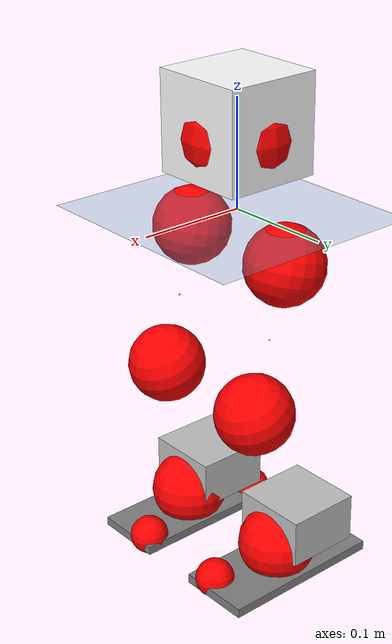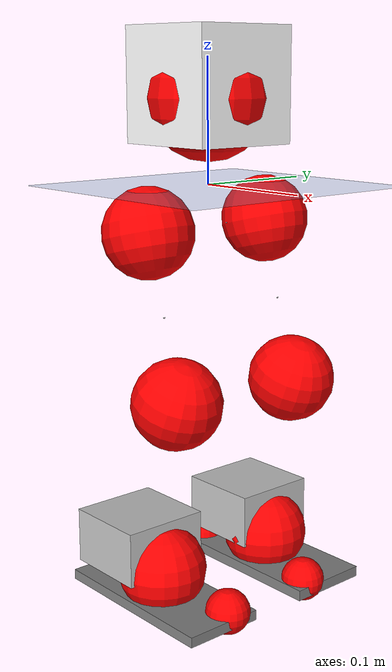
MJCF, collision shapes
<mujoco model="pi_12dof_release_v1">
  <compiler angle="radian" assetdir="assets" balanceinertia="true" inertiafromgeom="false"/>

  <option timestep="0.005" density="1.2" viscosity="2e-05"/>

  <size nkey="1"/>

  <visual>
    <quality shadowsize="8192"/>
    <map shadowclip="0.5"/>
  </visual>

  <default>
    <default class="/">
      <joint armature="0.01" damping="0.01" frictionloss="0.01"/>
      <geom contype="0" conaffinity="0" group="1" solref="-1000 -80"/>
      <site size="0.01 0.005 0.005" group="5"/>
      <general forcelimited="true" biastype="affine" gainprm="20" biasprm="0 -20 -0.5"/>
      <default class="foot">
        <geom size="0.0845 0.036 0.005" type="box" condim="6" group="4" priority="1" friction="0.9 0.2 0.2" solimp="0.015 1 0.005"/>
      </default>
      <default class="reward_collision_sphere">
        <geom group="5" rgba="1 0 0 1"/>
      </default>
    </default>
  </default>

  <asset>
    <texture type="skybox" colorspace="auto" name="//unnamed_texture_0" builtin="gradient" rgb1="0.95 0.95 0.95" rgb2="0.95 0.95 0.95" width="100" height="600"/>
    <texture type="2d" colorspace="auto" name="texplane" builtin="checker" rgb1="0.345 0.575 0.748" rgb2="0.345 0.575 0.748" markrgb="1 1 1" width="512" height="512"/>
    <material name="MatPlane" class="/" texture="texplane" texuniform="true" texrepeat="2 2" specular="0.9"/>
    <mesh name="baselink_1" class="/" file="baselink_1.STL"/>
    <mesh name="r_hip_pitch_link" class="/" file="r_hip_pitch_link.STL"/>
    <mesh name="r_hip_roll_link" class="/" file="r_hip_roll_link.STL"/>
    <mesh name="r_thigh_link" class="/" file="r_thigh_link.STL"/>
    <mesh name="r_calf_link" class="/" file="r_calf_link.STL"/>
    <mesh name="r_ankle_pitch_link" class="/" file="r_ankle_pitch_link.STL"/>
    <mesh name="r_ankle_roll_link" class="/" file="r_ankle_roll_link.STL"/>
    <mesh name="l_hip_pitch_link" class="/" file="l_hip_pitch_link.STL"/>
    <mesh name="l_hip_roll_link" class="/" file="l_hip_roll_link.STL"/>
    <mesh name="l_thigh_link" class="/" file="l_thigh_link.STL"/>
    <mesh name="l_calf_link" class="/" file="l_calf_link.STL"/>
    <mesh name="l_ankle_pitch_link" class="/" file="l_ankle_pitch_link.STL"/>
    <mesh name="l_ankle_roll_link" class="/" file="l_ankle_roll_link.STL"/>
  </asset>

  <worldbody>
    <geom name="floor" class="/" size="100 100 0.125" type="plane" group="0" material="MatPlane"/>
    <light name="toplight_shadow" class="/" pos="0 0 5" dir="0.0990148 0.0990148 -0.990148" type="directional" ambient="0.04 0.04 0.04" diffuse="0.55 0.55 0.55" specular="0.12 0.12 0.12"/>
    <light name="toplight_fill" class="/" pos="0 0 5" dir="0.0990148 0.0990148 -0.990148" type="directional" castshadow="false" ambient="0.04 0.04 0.04" diffuse="0.3 0.3 0.3" specular="0.08 0.08 0.08"/>
    <body name="trunk" pos="2.05861e-05 6.96082e-05 -0.000167122" quat="1 -9.39677e-05 -6.63029e-05 1.88464e-05">
      <inertial pos="0.00263019 0.0010802 0.0401812" quat="0.695476 0.00969742 0.00971463 0.718418" mass="1.66804" diaginertia="0.00866463 0.00289483 0.0037489"/>
      <joint name="//unnamed_joint_0" type="free"/>
      <geom name="//unnamed_geom_1" class="/" type="mesh" density="0" rgba="1 1 1 1" mesh="baselink_1"/>
      <geom name="//unnamed_geom_2" class="/" size="0.045695 0.045695 0.045695" pos="0 0 0.0781486" type="box" rgba="1 1 1 1"/>
      <geom name="//unnamed_geom_3" class="reward_collision_sphere" size="0.0502644" pos="0 0 0.06838"/>
      <site name="imu" class="/" pos="-0.00461758 0.00352071 -0.00492692" size="0.00913899"/>
      <camera name="track" class="/" pos="0 -1.58833 0" quat="0.707107 0.707107 0 0" mode="trackcom"/>
      <camera name="ego_camera" class="/" pos="0.0728007 0 0.175834" quat="-0.5 -0.5 0.5 0.5"/>
      <body name="r_hip_pitch_link" pos="-0.000492135 -0.0173957 -0.0326947" quat="0.992237 -0.000151816 -0.124362 -2.08168e-05">
        <inertial pos="-7.11982e-05 -0.0451092 0.00101988" quat="-0.0187813 0.706699 -0.0263699 0.706773" mass="0.286609" diaginertia="9.42333e-05 3.15446e-05 7.39549e-05"/>
        <joint name="r_hip_pitch_joint" class="/" pos="0 0 0" axis="0.0011184 -0.999924 -0.0123177" range="-1.75987 1.25078" armature="0.00941496" damping="0.0127046" frictionloss="0.00893538"/>
        <geom name="//unnamed_geom_4" class="/" type="mesh" density="0" rgba="0.75294 0.75294 0.75294 1" mesh="r_hip_pitch_link"/>
        <geom name="//unnamed_geom_5" class="/" size="0.00045695 0.00045695 0.00045695" type="box" rgba="0.75294 0.75294 0.75294 1"/>
        <body name="r_hip_roll_link" pos="0.000669463 -0.0442551 -0.000538807" quat="1 -2.2704e-05 -1.34292e-06 -1.09978e-05">
          <inertial pos="-0.00135498 -0.000471406 -0.0596851" quat="0.705813 -0.0788465 -0.082507 0.699145" mass="0.289922" diaginertia="0.000289098 8.70233e-05 0.000109399"/>
          <joint name="r_hip_roll_joint" class="/" pos="0 0 0" axis="-0.999994 0.00237984 0.00253235" range="-0.122258 0.487617" armature="0.00897024" damping="0.00469142" frictionloss="0.00885386"/>
          <geom name="//unnamed_geom_6" class="/" type="mesh" density="0" rgba="0.75294 0.75294 0.75294 1" mesh="r_hip_roll_link"/>
          <geom name="//unnamed_geom_7" class="/" size="0.00045695 0.00045695 0.00045695" type="box" rgba="0.75294 0.75294 0.75294 1"/>
          <geom name="//unnamed_geom_8" class="reward_collision_sphere" size="0.036556"/>
          <body name="r_thigh_link" pos="0.000734726 0.000998796 -0.0665342" quat="1 -0.000520362 -0.000444903 -0.000342765">
            <inertial pos="0.000564765 0.000761716 -0.0461621" quat="0.737364 0.675495 -0.000181276 0.000115317" mass="0.0866496" diaginertia="0.000107857 2.9403e-05 5.14705e-05"/>
            <joint name="r_thigh_joint" class="/" pos="0 0 0" axis="0.00241344 0.000746435 -0.999997" range="-0.304227 0.587266" armature="0.0095566" damping="0.00305004" frictionloss="0.00900673"/>
            <geom name="//unnamed_geom_9" class="/" type="mesh" density="0" rgba="0.75294 0.75294 0.75294 1" mesh="r_thigh_link"/>
            <geom name="//unnamed_geom_10" class="/" size="0.00045695 0.00045695 0.00045695" type="box" rgba="0.75294 0.75294 0.75294 1"/>
            <body name="r_calf_link" pos="-0.000977826 -0.000748512 -0.0679136" quat="0.947527 -9.88589e-05 0.319676 -0.000259121">
              <inertial pos="-0.000294775 -0.00097456 -0.0682659" quat="0.999983 -0.00357156 0.00018946 0.00458937" mass="0.604183" diaginertia="0.00296771 0.00109763 0.000155304"/>
              <joint name="r_calf_joint" class="/" pos="0 0 0" axis="-0.00623302 -0.999961 -0.00627764" stiffness="0.000146001" range="-1.6307 0.64725" armature="0.00901113" damping="0.0068621" frictionloss="0.0094358"/>
              <geom name="//unnamed_geom_11" class="/" type="mesh" density="0" rgba="0.75294 0.75294 0.75294 1" mesh="r_calf_link"/>
              <geom name="//unnamed_geom_12" class="/" size="0.00045695 0.00045695 0.00045695" type="box" rgba="0.75294 0.75294 0.75294 1"/>
              <geom name="//unnamed_geom_13" class="reward_collision_sphere" size="0.036556"/>
              <body name="r_ankle_pitch_link" pos="0.00284876 0.000247596 -0.136617" quat="0.980068 0.00043021 -0.198663 -6.14528e-06">
                <inertial pos="0.00483301 0.00247612 -0.000279132" quat="0.00286845 0.707533 -0.00199867 0.706672" mass="0.139403" diaginertia="0.000266641 7.28449e-05 0.000109523"/>
                <joint name="r_ankle_pitch_joint" class="/" pos="0 0 0" axis="0.00447751 -0.999982 -0.00403113" range="-1.29398 0.481525" armature="0.00928747" damping="0.017121" frictionloss="0.0096351"/>
                <geom name="//unnamed_geom_14" class="/" type="mesh" density="0" rgba="0.75294 0.75294 0.75294 1" mesh="r_ankle_pitch_link"/>
                <geom name="//unnamed_geom_15" class="/" size="0.0356421 0.036556 0.0228475" type="box" rgba="0.75294 0.75294 0.75294 1"/>
                <body name="r_ankle_roll_link" pos="0.0763336 0.00165038 -0.000264819" quat="1 -3.60119e-05 3.94399e-05 7.99929e-05">
                  <inertial pos="-0.0222327 0.000251837 -0.0122" quat="0.562179 0.429929 0.431768 0.559189" mass="0.385756" diaginertia="0.000971405 0.000327884 0.000253633"/>
                  <joint name="r_ankle_roll_joint" class="/" pos="0 0 0" axis="-1 -7.56365e-05 -0.000893114" range="-0.139884 0.144702" armature="0.00912571" damping="0.00658927" frictionloss="0.0101071"/>
                  <geom name="//unnamed_geom_16" class="/" type="mesh" density="0" rgba="0.75294 0.75294 0.75294 1" mesh="r_ankle_roll_link"/>
                  <geom name="//unnamed_geom_17" class="/" type="mesh" rgba="0.75294 0.75294 0.75294 1" mesh="r_ankle_roll_link"/>
                  <geom name="right_foot" class="foot" size="0.0780175 0.033669 0.00423125" pos="-0.0495045 0 -0.0429817"/>
                  <geom name="//unnamed_geom_19" class="reward_collision_sphere" size="0.036556" pos="-0.0485338 0 -0.0195371"/>
                  <geom name="//unnamed_geom_20" class="reward_collision_sphere" size="0.018278" pos="0.0145601 0.0158833 -0.0390743"/>
                  <geom name="//unnamed_geom_21" class="reward_collision_sphere" size="0.018278" pos="-0.116481 0.0158833 -0.0390743"/>
                  <site name="right_foot" class="foot" pos="-0.0495045 0 -0.0429817" size="0.00913899"/>
                </body>
              </body>
            </body>
          </body>
        </body>
      </body>
      <body name="l_hip_pitch_link" pos="0.000771356 0.0189013 -0.0322696" quat="0.992197 3.37122e-06 -0.124682 4.14209e-06">
        <inertial pos="0.00182578 0.041457 -0.000259595" quat="-0.0488396 0.701623 0.0287722 0.71029" mass="0.289125" diaginertia="0.000109365 3.31321e-05 9.07165e-05"/>
        <joint name="l_hip_pitch_joint" class="/" pos="0 0 0" axis="-0.00320105 0.999994 -0.000877482" range="-1.23177 1.72177" armature="0.00893731" damping="0.00630862" frictionloss="0.00868623"/>
        <geom name="//unnamed_geom_22" class="/" type="mesh" density="0" rgba="0.75294 0.75294 0.75294 1" mesh="l_hip_pitch_link"/>
        <geom name="//unnamed_geom_23" class="/" size="0.00045695 0.00045695 0.00045695" type="box" rgba="0.75294 0.75294 0.75294 1"/>
        <body name="l_hip_roll_link" pos="-4.72116e-05 0.0431223 -4.28678e-05" quat="1 0.00013211 0.000142216 0.000457936">
          <inertial pos="-0.00145072 -0.000111636 -0.0597421" quat="0.699074 -0.0704418 -0.0767808 0.707416" mass="0.299721" diaginertia="0.000292454 9.03052e-05 0.000115407"/>
          <joint name="l_hip_roll_joint" class="/" pos="0 0 0" axis="-0.999981 -0.0041088 -0.00467971" range="-0.456707 0.0817019" armature="0.00907006" damping="0.00273686" frictionloss="0.00937707"/>
          <geom name="//unnamed_geom_24" class="/" type="mesh" density="0" rgba="0.75294 0.75294 0.75294 1" mesh="l_hip_roll_link"/>
          <geom name="//unnamed_geom_25" class="/" size="0.00045695 0.00045695 0.00045695" type="box" rgba="0.75294 0.75294 0.75294 1"/>
          <geom name="//unnamed_geom_26" class="reward_collision_sphere" size="0.036556"/>
          <body name="l_thigh_link" pos="-5.64282e-05 -0.000123111 -0.0679063" quat="1 0.00048569 -8.29054e-05 0.000153253">
            <inertial pos="0.00123896 -0.000489058 -0.0468075" quat="0.675216 0.73762 0.000227943 -5.22772e-05" mass="0.0870118" diaginertia="0.000111893 3.13623e-05 5.45221e-05"/>
            <joint name="l_thigh_joint" class="/" pos="0 0 0" axis="-0.00180567 0.00103646 -0.999998" range="-0.610667 0.274859" armature="0.00949592" damping="0.00756699" frictionloss="0.00905503"/>
            <geom name="//unnamed_geom_27" class="/" type="mesh" density="0" rgba="0.75294 0.75294 0.75294 1" mesh="l_thigh_link"/>
            <geom name="//unnamed_geom_28" class="/" size="0.00045695 0.00045695 0.00045695" type="box" rgba="0.75294 0.75294 0.75294 1"/>
            <body name="l_calf_link" pos="1.96063e-05 0.000546361 -0.0689548" quat="0.94759 0.000304777 0.319489 -0.000498157">
              <inertial pos="0.000678017 0.00144365 -0.067697" quat="0.999896 0.0127152 0.00497753 0.00463549" mass="0.626815" diaginertia="0.00302735 0.00112028 0.000155873"/>
              <joint name="l_calf_joint" class="/" pos="0 0 0" axis="0.00062745 1 0.000123873" range="-0.654714 1.67118" armature="0.0092645" damping="0.00544899" frictionloss="0.00926294"/>
              <geom name="//unnamed_geom_29" class="/" type="mesh" density="0" rgba="0.75294 0.75294 0.75294 1" mesh="l_calf_link"/>
              <geom name="//unnamed_geom_30" class="/" size="0.00045695 0.00045695 0.00045695" type="box" rgba="0.75294 0.75294 0.75294 1"/>
              <geom name="//unnamed_geom_31" class="reward_collision_sphere" size="0.036556"/>
              <body name="l_ankle_pitch_link" pos="0.000795593 0.000389425 -0.139014" quat="0.980112 -0.000141674 -0.198446 2.58478e-05">
                <inertial pos="0.00468217 0.00150486 -0.000823005" quat="-0.00129917 0.704907 0.0013879 0.709297" mass="0.130311" diaginertia="0.000257213 6.83939e-05 0.000102947"/>
                <joint name="l_ankle_pitch_joint" class="/" pos="0 0 0" axis="-0.00891028 0.999959 0.00143381" range="-0.496081 1.29649" armature="0.00898896" damping="0" frictionloss="0.00925408"/>
                <geom name="//unnamed_geom_32" class="/" type="mesh" density="0" rgba="0.75294 0.75294 0.75294 1" mesh="l_ankle_pitch_link"/>
                <geom name="//unnamed_geom_33" class="/" size="0.0356421 0.036556 0.0228475" type="box" rgba="0.75294 0.75294 0.75294 1"/>
                <body name="l_ankle_roll_link" pos="0.0722816 -0.000650634 -0.000451096" quat="1 0.000231832 3.22085e-05 1.66571e-05">
                  <inertial pos="-0.0246211 -0.000503644 -0.0143028" quat="0.553618 0.428639 0.435297 0.565943" mass="0.392585" diaginertia="0.000987158 0.000332438 0.000261836"/>
                  <joint name="l_ankle_roll_joint" class="/" pos="0 0 0" axis="-0.999933 -0.00552382 0.0101437" range="-0.157525 0.106692" armature="0.00915034" damping="0.0103805" frictionloss="0.00813837"/>
                  <geom name="//unnamed_geom_34" class="/" type="mesh" density="0" rgba="0.75294 0.75294 0.75294 1" mesh="l_ankle_roll_link"/>
                  <geom name="//unnamed_geom_35" class="/" type="mesh" rgba="0.75294 0.75294 0.75294 1" mesh="l_ankle_roll_link"/>
                  <geom name="left_foot" class="foot" size="0.0798157 0.0351804 0.00448888" pos="-0.0495045 0 -0.0429817"/>
                  <geom name="//unnamed_geom_37" class="reward_collision_sphere" size="0.036556" pos="-0.0485338 0 -0.0195371"/>
                  <geom name="//unnamed_geom_38" class="reward_collision_sphere" size="0.018278" pos="0.0145601 -0.0158833 -0.0390743"/>
                  <geom name="//unnamed_geom_39" class="reward_collision_sphere" size="0.018278" pos="-0.116481 -0.0158833 -0.0390743"/>
                  <site name="left_foot" class="foot" pos="-0.0495045 0 -0.0429817" size="0.00913899"/>
                </body>
              </body>
            </body>
          </body>
        </body>
      </body>
    </body>
  </worldbody>

  <contact>
    <pair class="/" geom1="floor" geom2="right_foot" name="//unnamed_contact_1"/>
    <pair class="/" geom1="floor" geom2="left_foot" name="//unnamed_contact_0"/>
  </contact>

  <actuator>
    <general name="r_hip_pitch_joint" class="/" joint="r_hip_pitch_joint" forcerange="-19.1136 19.1136" gainprm="18.8002" biasprm="0 -18.8002 -0.446379"/>
    <general name="r_hip_roll_joint" class="/" joint="r_hip_roll_joint" forcerange="-19.0927 19.0927" gainprm="18.8002" biasprm="0 -18.8002 -0.446379"/>
    <general name="r_thigh_joint" class="/" joint="r_thigh_joint" forcerange="-19.5375 19.5375" gainprm="18.8002" biasprm="0 -18.8002 -0.446379"/>
    <general name="r_calf_joint" class="/" joint="r_calf_joint" forcerange="-18.5372 18.5372" gainprm="18.8002" biasprm="0 -18.8002 -0.446379"/>
    <general name="r_ankle_pitch_joint" class="/" joint="r_ankle_pitch_joint" forcerange="-18.9634 18.9634" gainprm="18.8002" biasprm="0 -18.8002 -0.446379"/>
    <general name="r_ankle_roll_joint" class="/" joint="r_ankle_roll_joint" forcerange="-20.2565 20.2565" gainprm="18.8002" biasprm="0 -18.8002 -0.446379"/>
    <general name="l_hip_pitch_joint" class="/" joint="l_hip_pitch_joint" forcerange="-19.7207 19.7207" gainprm="18.8002" biasprm="0 -18.8002 -0.446379"/>
    <general name="l_hip_roll_joint" class="/" joint="l_hip_roll_joint" forcerange="-17.6537 17.6537" gainprm="18.8002" biasprm="0 -18.8002 -0.446379"/>
    <general name="l_thigh_joint" class="/" joint="l_thigh_joint" forcerange="-18.8637 18.8637" gainprm="18.8002" biasprm="0 -18.8002 -0.446379"/>
    <general name="l_calf_joint" class="/" joint="l_calf_joint" forcerange="-19.7018 19.7018" gainprm="18.8002" biasprm="0 -18.8002 -0.446379"/>
    <general name="l_ankle_pitch_joint" class="/" joint="l_ankle_pitch_joint" forcerange="-18.5344 18.5344" gainprm="18.8002" biasprm="0 -18.8002 -0.446379"/>
    <general name="l_ankle_roll_joint" class="/" joint="l_ankle_roll_joint" forcerange="-19.8567 19.8567" gainprm="18.8002" biasprm="0 -18.8002 -0.446379"/>
  </actuator>

  <sensor>
    <gyro site="imu" name="imu_angular_velocity"/>
    <velocimeter site="imu" name="imu_linear_velocity"/>
    <framelinvel objtype="site" objname="left_foot" name="left_foot_global_linear_velocity"/>
    <framelinvel objtype="site" objname="right_foot" name="right_foot_global_linear_velocity"/>
  </sensor>

  <keyframe>
    <key name="home" qpos="0 0 0.291 1 0 0 0 0.4 0 0 -0.8 0.4 0 -0.4 0 0 0.8 -0.4 0"/>
  </keyframe>
</mujoco>
